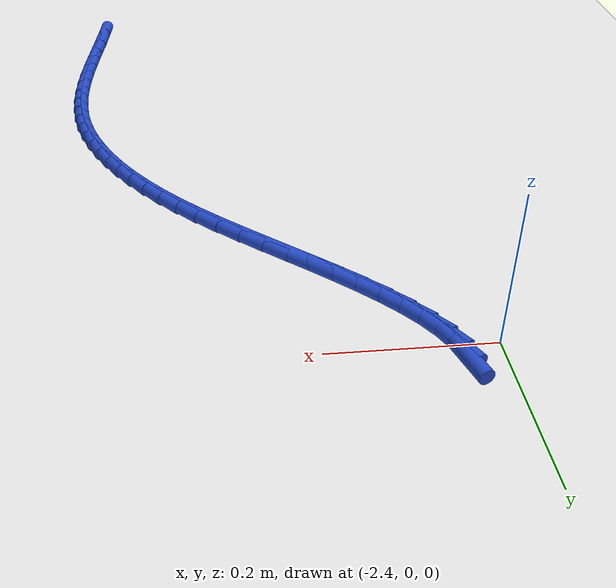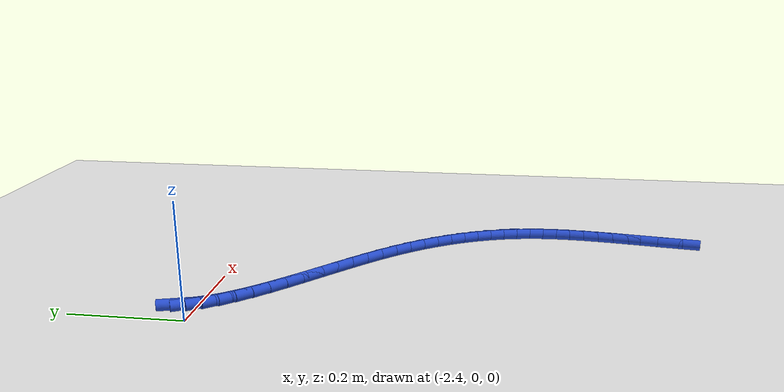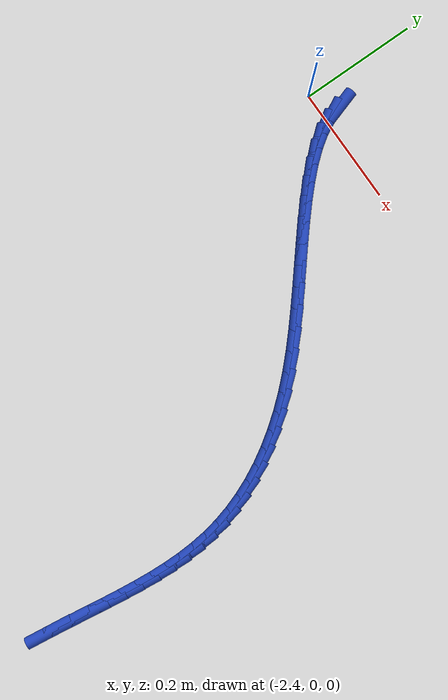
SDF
<sdf version="1.6">
 <world name="default">
  <model name="ground_plane">
   <static>1</static>
   <link name="link">
    <collision name="collision">
     <geometry><plane><normal>0 0 1</normal><size>100 100</size></plane></geometry>
     <surface><friction><ode><mu>100</mu><mu2>50</mu2></ode></friction></surface>
    </collision>
    <visual name="visual">
     <cast_shadows>0</cast_shadows>
     <geometry><plane><normal>0 0 1</normal><size>100 100</size></plane></geometry>
     <material>
      <script><uri>file://media/materials/scripts/gazebo.material</uri><name>Gazebo/WhiteGlow</name></script>
     </material>
    </visual>
   </link>
  </model>
  <model name="line">
   <link name="link_142">
    <pose>-2.353495947948542 0.022377274962875133 0.01 0 1.57 -1.2639162105799902</pose>
    <collision name="collision">
     <geometry><cylinder><radius>0.01</radius><length>0.08</length></cylinder></geometry>
    </collision>
    <visual name="visual">
     <material>
      <script><name>Gazebo/Blue</name><uri>file://media/materials/scripts/gazebo.material</uri></script>
     </material>
     <geometry><cylinder><radius>0.01</radius><length>0.08</length></cylinder></geometry>
    </visual>
   </link>
   <link name="link_143">
    <pose>-2.3470021237173295 0.0018849732297905686 0.01 0 1.57 -1.0937548407109334</pose>
    <collision name="collision">
     <geometry><cylinder><radius>0.01</radius><length>0.08</length></cylinder></geometry>
    </collision>
    <visual name="visual">
     <material>
      <script><name>Gazebo/Blue</name><uri>file://media/materials/scripts/gazebo.material</uri></script>
     </material>
     <geometry><cylinder><radius>0.01</radius><length>0.08</length></cylinder></geometry>
    </visual>
   </link>
   <link name="link_144">
    <pose>-2.3362881236615363 -0.01884419522368785 0.01 0 1.57 -0.9670444237255625</pose>
    <collision name="collision">
     <geometry><cylinder><radius>0.01</radius><length>0.08</length></cylinder></geometry>
    </collision>
    <visual name="visual">
     <material>
      <script><name>Gazebo/Blue</name><uri>file://media/materials/scripts/gazebo.material</uri></script>
     </material>
     <geometry><cylinder><radius>0.01</radius><length>0.08</length></cylinder></geometry>
    </visual>
   </link>
   <link name="link_145">
    <pose>-2.321823489370314 -0.039817799628437525 0.01 0 1.57 -0.8744553584458588</pose>
    <collision name="collision">
     <geometry><cylinder><radius>0.01</radius><length>0.08</length></cylinder></geometry>
    </collision>
    <visual name="visual">
     <material>
      <script><name>Gazebo/Blue</name><uri>file://media/materials/scripts/gazebo.material</uri></script>
     </material>
     <geometry><cylinder><radius>0.01</radius><length>0.08</length></cylinder></geometry>
    </visual>
   </link>
   <link name="link_146">
    <pose>-2.304077762432815 -0.06104340921533643 0.01 0 1.57 -0.8074652674536368</pose>
    <collision name="collision">
     <geometry><cylinder><radius>0.01</radius><length>0.08</length></cylinder></geometry>
    </collision>
    <visual name="visual">
     <material>
      <script><name>Gazebo/Blue</name><uri>file://media/materials/scripts/gazebo.material</uri></script>
     </material>
     <geometry><cylinder><radius>0.01</radius><length>0.08</length></cylinder></geometry>
    </visual>
   </link>
   <link name="link_147">
    <pose>-2.283520484438193 -0.08252859321526046 0.01 0 1.57 -0.7597169499521451</pose>
    <collision name="collision">
     <geometry><cylinder><radius>0.01</radius><length>0.08</length></cylinder></geometry>
    </collision>
    <visual name="visual">
     <material>
      <script><name>Gazebo/Blue</name><uri>file://media/materials/scripts/gazebo.material</uri></script>
     </material>
     <geometry><cylinder><radius>0.01</radius><length>0.08</length></cylinder></geometry>
    </visual>
   </link>
   <link name="link_148">
    <pose>-2.2606211969756003 -0.10428092085908766 0.01 0 1.57 -0.7268160093031479</pose>
    <collision name="collision">
     <geometry><cylinder><radius>0.01</radius><length>0.08</length></cylinder></geometry>
    </collision>
    <visual name="visual">
     <material>
      <script><name>Gazebo/Blue</name><uri>file://media/materials/scripts/gazebo.material</uri></script>
     </material>
     <geometry><cylinder><radius>0.01</radius><length>0.08</length></cylinder></geometry>
    </visual>
   </link>
   <link name="link_149">
    <pose>-2.23584944163419 -0.1263079613776953 0.01 0 1.57 -0.7058420134708091</pose>
    <collision name="collision">
     <geometry><cylinder><radius>0.01</radius><length>0.08</length></cylinder></geometry>
    </collision>
    <visual name="visual">
     <material>
      <script><name>Gazebo/Blue</name><uri>file://media/materials/scripts/gazebo.material</uri></script>
     </material>
     <geometry><cylinder><radius>0.01</radius><length>0.08</length></cylinder></geometry>
    </visual>
   </link>
   <link name="link_150">
    <pose>-2.2096747600031152 -0.1486172840019607 0.01 0 1.57 -0.6949367642936353</pose>
    <collision name="collision">
     <geometry><cylinder><radius>0.01</radius><length>0.08</length></cylinder></geometry>
    </collision>
    <visual name="visual">
     <material>
      <script><name>Gazebo/Blue</name><uri>file://media/materials/scripts/gazebo.material</uri></script>
     </material>
     <geometry><cylinder><radius>0.01</radius><length>0.08</length></cylinder></geometry>
    </visual>
   </link>
   <link name="link_151">
    <pose>-2.1825666936715273 -0.17121645796276114 0.01 0 1.57 -0.6930235393886389</pose>
    <collision name="collision">
     <geometry><cylinder><radius>0.01</radius><length>0.08</length></cylinder></geometry>
    </collision>
    <visual name="visual">
     <material>
      <script><name>Gazebo/Blue</name><uri>file://media/materials/scripts/gazebo.material</uri></script>
     </material>
     <geometry><cylinder><radius>0.01</radius><length>0.08</length></cylinder></geometry>
    </visual>
   </link>
   <link name="link_152">
    <pose>-2.15499478422858 -0.19411305249097396 0.01 0 1.57 -0.6996366937446039</pose>
    <collision name="collision">
     <geometry><cylinder><radius>0.01</radius><length>0.08</length></cylinder></geometry>
    </collision>
    <visual name="visual">
     <material>
      <script><name>Gazebo/Blue</name><uri>file://media/materials/scripts/gazebo.material</uri></script>
     </material>
     <geometry><cylinder><radius>0.01</radius><length>0.08</length></cylinder></geometry>
    </visual>
   </link>
   <link name="link_153">
    <pose>-2.1274285732634257 -0.21731463681747637 0.01 0 1.57 -0.7148343679197093</pose>
    <collision name="collision">
     <geometry><cylinder><radius>0.01</radius><length>0.08</length></cylinder></geometry>
    </collision>
    <visual name="visual">
     <material>
      <script><name>Gazebo/Blue</name><uri>file://media/materials/scripts/gazebo.material</uri></script>
     </material>
     <geometry><cylinder><radius>0.01</radius><length>0.08</length></cylinder></geometry>
    </visual>
   </link>
   <link name="link_154">
    <pose>-2.100337602365218 -0.24082878017314585 0.01 0 1.57 -0.739174683328718</pose>
    <collision name="collision">
     <geometry><cylinder><radius>0.01</radius><length>0.08</length></cylinder></geometry>
    </collision>
    <visual name="visual">
     <material>
      <script><name>Gazebo/Blue</name><uri>file://media/materials/scripts/gazebo.material</uri></script>
     </material>
     <geometry><cylinder><radius>0.01</radius><length>0.08</length></cylinder></geometry>
    </visual>
   </link>
   <link name="link_155">
    <pose>-2.074191413123107 -0.26466305178886024 0.01 0 1.57 -0.7737428886001398</pose>
    <collision name="collision">
     <geometry><cylinder><radius>0.01</radius><length>0.08</length></cylinder></geometry>
    </collision>
    <visual name="visual">
     <material>
      <script><name>Gazebo/Blue</name><uri>file://media/materials/scripts/gazebo.material</uri></script>
     </material>
     <geometry><cylinder><radius>0.01</radius><length>0.08</length></cylinder></geometry>
    </visual>
   </link>
   <link name="link_156">
    <pose>-2.04945954712625 -0.2888250208954956 0.01 0 1.57 -0.8188057256648199</pose>
    <collision name="collision">
     <geometry><cylinder><radius>0.01</radius><length>0.08</length></cylinder></geometry>
    </collision>
    <visual name="visual">
     <material>
      <script><name>Gazebo/Blue</name><uri>file://media/materials/scripts/gazebo.material</uri></script>
     </material>
     <geometry><cylinder><radius>0.01</radius><length>0.08</length></cylinder></geometry>
    </visual>
   </link>
   <link name="link_157">
    <pose>-2.026550346481904 -0.31331841611135064 0.01 0 1.57 -0.8689216338909035</pose>
    <collision name="collision">
     <geometry><cylinder><radius>0.01</radius><length>0.08</length></cylinder></geometry>
    </collision>
    <visual name="visual">
     <material>
      <script><name>Gazebo/Blue</name><uri>file://media/materials/scripts/gazebo.material</uri></script>
     </material>
     <geometry><cylinder><radius>0.01</radius><length>0.08</length></cylinder></geometry>
    </visual>
   </link>
   <link name="link_158">
    <pose>-2.0055736899408436 -0.3381282357961351 0.01 0 1.57 -0.9223192493412266</pose>
    <collision name="collision">
     <geometry><cylinder><radius>0.01</radius><length>0.08</length></cylinder></geometry>
    </collision>
    <visual name="visual">
     <material>
      <script><name>Gazebo/Blue</name><uri>file://media/materials/scripts/gazebo.material</uri></script>
     </material>
     <geometry><cylinder><radius>0.01</radius><length>0.08</length></cylinder></geometry>
    </visual>
   </link>
   <link name="link_159">
    <pose>-1.9865486068728504 -0.3632337769986215 0.01 0 1.57 -0.9791439812174592</pose>
    <collision name="collision">
     <geometry><cylinder><radius>0.01</radius><length>0.08</length></cylinder></geometry>
    </collision>
    <visual name="visual">
     <material>
      <script><name>Gazebo/Blue</name><uri>file://media/materials/scripts/gazebo.material</uri></script>
     </material>
     <geometry><cylinder><radius>0.01</radius><length>0.08</length></cylinder></geometry>
    </visual>
   </link>
   <link name="link_160">
    <pose>-1.9694941051520047 -0.38861433541860624 0.01 0 1.57 -1.0394903757198313</pose>
    <collision name="collision">
     <geometry><cylinder><radius>0.01</radius><length>0.08</length></cylinder></geometry>
    </collision>
    <visual name="visual">
     <material>
      <script><name>Gazebo/Blue</name><uri>file://media/materials/scripts/gazebo.material</uri></script>
     </material>
     <geometry><cylinder><radius>0.01</radius><length>0.08</length></cylinder></geometry>
    </visual>
   </link>
   <link name="link_161">
    <pose>-1.9544291926523862 -0.41424920675588545 0.01 0 1.57 -1.1033805844883315</pose>
    <collision name="collision">
     <geometry><cylinder><radius>0.01</radius><length>0.08</length></cylinder></geometry>
    </collision>
    <visual name="visual">
     <material>
      <script><name>Gazebo/Blue</name><uri>file://media/materials/scripts/gazebo.material</uri></script>
     </material>
     <geometry><cylinder><radius>0.01</radius><length>0.08</length></cylinder></geometry>
    </visual>
   </link>
   <link name="link_162">
    <pose>-1.9413728772480765 -0.4401176867102555 0.01 0 1.57 -1.1707417465132626</pose>
    <collision name="collision">
     <geometry><cylinder><radius>0.01</radius><length>0.08</length></cylinder></geometry>
    </collision>
    <visual name="visual">
     <material>
      <script><name>Gazebo/Blue</name><uri>file://media/materials/scripts/gazebo.material</uri></script>
     </material>
     <geometry><cylinder><radius>0.01</radius><length>0.08</length></cylinder></geometry>
    </visual>
   </link>
   <link name="link_163">
    <pose>-1.930344166813155 -0.46619907098151236 0.01 0 1.57 -1.2413843431761364</pose>
    <collision name="collision">
     <geometry><cylinder><radius>0.01</radius><length>0.08</length></cylinder></geometry>
    </collision>
    <visual name="visual">
     <material>
      <script><name>Gazebo/Blue</name><uri>file://media/materials/scripts/gazebo.material</uri></script>
     </material>
     <geometry><cylinder><radius>0.01</radius><length>0.08</length></cylinder></geometry>
    </visual>
   </link>
   <link name="link_164">
    <pose>-1.9213620692217024 -0.4924726552694535 0.01 0 1.57 -1.3149852374299824</pose>
    <collision name="collision">
     <geometry><cylinder><radius>0.01</radius><length>0.08</length></cylinder></geometry>
    </collision>
    <visual name="visual">
     <material>
      <script><name>Gazebo/Blue</name><uri>file://media/materials/scripts/gazebo.material</uri></script>
     </material>
     <geometry><cylinder><radius>0.01</radius><length>0.08</length></cylinder></geometry>
    </visual>
   </link>
   <link name="link_165">
    <pose>-1.9144455923477994 -0.5189177352738732 0.01 0 1.57 -1.3905963319162415</pose>
    <collision name="collision">
     <geometry><cylinder><radius>0.01</radius><length>0.08</length></cylinder></geometry>
    </collision>
    <visual name="visual">
     <material>
      <script><name>Gazebo/Blue</name><uri>file://media/materials/scripts/gazebo.material</uri></script>
     </material>
     <geometry><cylinder><radius>0.01</radius><length>0.08</length></cylinder></geometry>
    </visual>
   </link>
   <link name="link_166">
    <pose>-1.9095992609833339 -0.5455201816531051 0.01 0 1.57 -1.4625457119921945</pose>
    <collision name="collision">
     <geometry><cylinder><radius>0.01</radius><length>0.08</length></cylinder></geometry>
    </collision>
    <visual name="visual">
     <material>
      <script><name>Gazebo/Blue</name><uri>file://media/materials/scripts/gazebo.material</uri></script>
     </material>
     <geometry><cylinder><radius>0.01</radius><length>0.08</length></cylinder></geometry>
    </visual>
   </link>
   <link name="link_167">
    <pose>-1.9066856592917236 -0.5723303025750159 0.01 0 1.57 -1.5266001789324033</pose>
    <collision name="collision">
     <geometry><cylinder><radius>0.01</radius><length>0.08</length></cylinder></geometry>
    </collision>
    <visual name="visual">
     <material>
      <script><name>Gazebo/Blue</name><uri>file://media/materials/scripts/gazebo.material</uri></script>
     </material>
     <geometry><cylinder><radius>0.01</radius><length>0.08</length></cylinder></geometry>
    </visual>
   </link>
   <link name="link_168">
    <pose>-1.905486959423678 -0.5994349112581491 0.01 0 1.57 1.5599747631651755</pose>
    <collision name="collision">
     <geometry><cylinder><radius>0.01</radius><length>0.08</length></cylinder></geometry>
    </collision>
    <visual name="visual">
     <material>
      <script><name>Gazebo/Blue</name><uri>file://media/materials/scripts/gazebo.material</uri></script>
     </material>
     <geometry><cylinder><radius>0.01</radius><length>0.08</length></cylinder></geometry>
    </visual>
   </link>
   <link name="link_169">
    <pose>-1.905784416062709 -0.6269212374283017 0.01 0 1.57 1.5145205415297727</pose>
    <collision name="collision">
     <geometry><cylinder><radius>0.01</radius><length>0.08</length></cylinder></geometry>
    </collision>
    <visual name="visual">
     <material>
      <script><name>Gazebo/Blue</name><uri>file://media/materials/scripts/gazebo.material</uri></script>
     </material>
     <geometry><cylinder><radius>0.01</radius><length>0.08</length></cylinder></geometry>
    </visual>
   </link>
   <link name="link_170">
    <pose>-1.907359283892329 -0.6548765108112712 0.01 0 1.57 1.4786900953141238</pose>
    <collision name="collision">
     <geometry><cylinder><radius>0.01</radius><length>0.08</length></cylinder></geometry>
    </collision>
    <visual name="visual">
     <material>
      <script><name>Gazebo/Blue</name><uri>file://media/materials/scripts/gazebo.material</uri></script>
     </material>
     <geometry><cylinder><radius>0.01</radius><length>0.08</length></cylinder></geometry>
    </visual>
   </link>
   <link name="link_171">
    <pose>-1.909992817596049 -0.6833879611328543 0.01 0 1.57 1.452217152233516</pose>
    <collision name="collision">
     <geometry><cylinder><radius>0.01</radius><length>0.08</length></cylinder></geometry>
    </collision>
    <visual name="visual">
     <material>
      <script><name>Gazebo/Blue</name><uri>file://media/materials/scripts/gazebo.material</uri></script>
     </material>
     <geometry><cylinder><radius>0.01</radius><length>0.08</length></cylinder></geometry>
    </visual>
   </link>
   <link name="link_172">
    <pose>-1.9134662718573805 -0.7125428181188486 0.01 0 1.57 1.4346335108982027</pose>
    <collision name="collision">
     <geometry><cylinder><radius>0.01</radius><length>0.08</length></cylinder></geometry>
    </collision>
    <visual name="visual">
     <material>
      <script><name>Gazebo/Blue</name><uri>file://media/materials/scripts/gazebo.material</uri></script>
     </material>
     <geometry><cylinder><radius>0.01</radius><length>0.08</length></cylinder></geometry>
    </visual>
   </link>
   <link name="link_173">
    <pose>-1.9175609013598347 -0.7424283114950516 0.01 0 1.57 1.4253624422540019</pose>
    <collision name="collision">
     <geometry><cylinder><radius>0.01</radius><length>0.08</length></cylinder></geometry>
    </collision>
    <visual name="visual">
     <material>
      <script><name>Gazebo/Blue</name><uri>file://media/materials/scripts/gazebo.material</uri></script>
     </material>
     <geometry><cylinder><radius>0.01</radius><length>0.08</length></cylinder></geometry>
    </visual>
   </link>
   <link name="link_174">
    <pose>-1.9220579607869248 -0.7731316709872591 0.01 0 1.57 1.4237795804259783</pose>
    <collision name="collision">
     <geometry><cylinder><radius>0.01</radius><length>0.08</length></cylinder></geometry>
    </collision>
    <visual name="visual">
     <material>
      <script><name>Gazebo/Blue</name><uri>file://media/materials/scripts/gazebo.material</uri></script>
     </material>
     <geometry><cylinder><radius>0.01</radius><length>0.08</length></cylinder></geometry>
    </visual>
   </link>
   <link name="link_175">
    <pose>-1.926738704822161 -0.8047401263212689 0.01 0 1.57 1.4292471236408972</pose>
    <collision name="collision">
     <geometry><cylinder><radius>0.01</radius><length>0.08</length></cylinder></geometry>
    </collision>
    <visual name="visual">
     <material>
      <script><name>Gazebo/Blue</name><uri>file://media/materials/scripts/gazebo.material</uri></script>
     </material>
     <geometry><cylinder><radius>0.01</radius><length>0.08</length></cylinder></geometry>
    </visual>
   </link>
   <link name="link_176">
    <pose>-1.9313843881490564 -0.8373409072228786 0.01 0 1.57 1.4411291156254482</pose>
    <collision name="collision">
     <geometry><cylinder><radius>0.01</radius><length>0.08</length></cylinder></geometry>
    </collision>
    <visual name="visual">
     <material>
      <script><name>Gazebo/Blue</name><uri>file://media/materials/scripts/gazebo.material</uri></script>
     </material>
     <geometry><cylinder><radius>0.01</radius><length>0.08</length></cylinder></geometry>
    </visual>
   </link>
  </model>
 </world>
</sdf>
